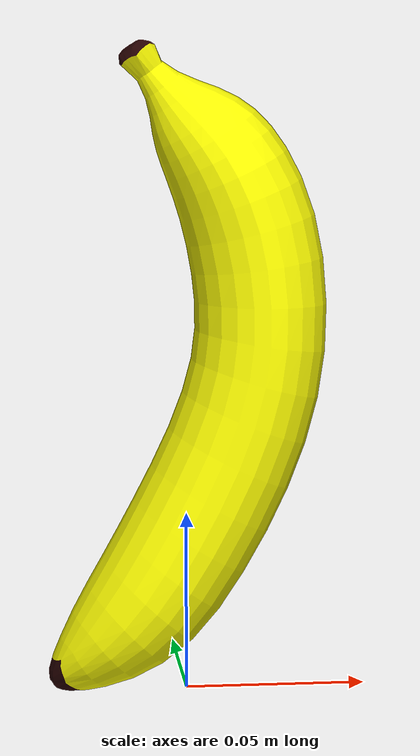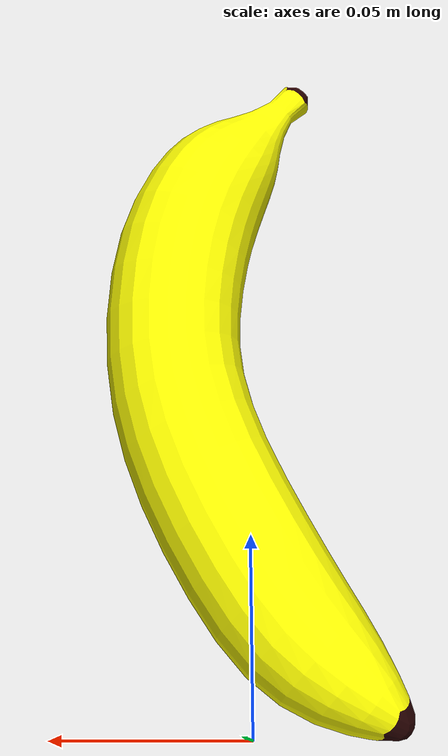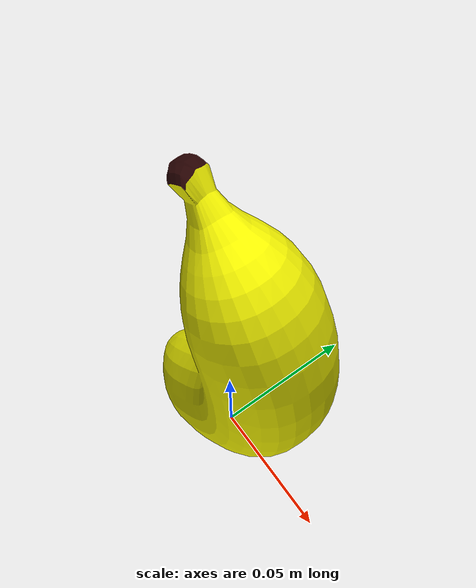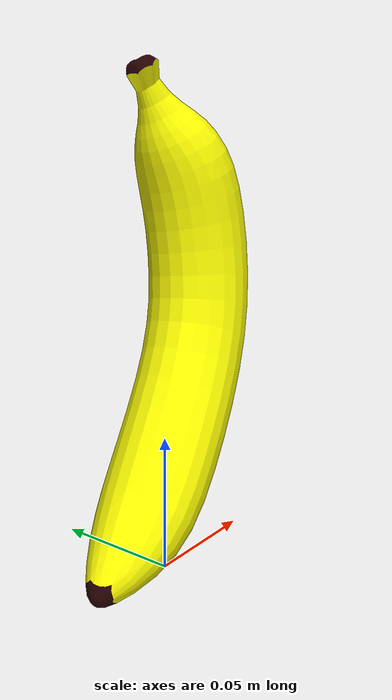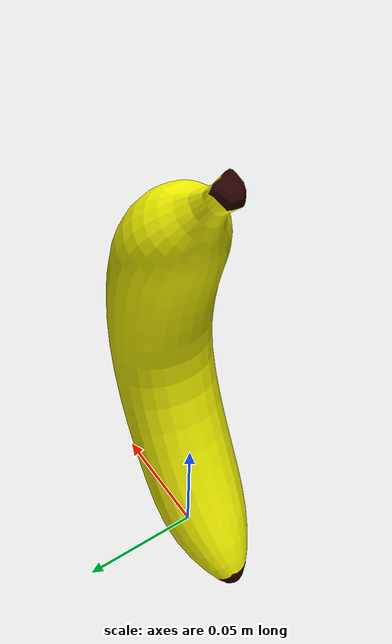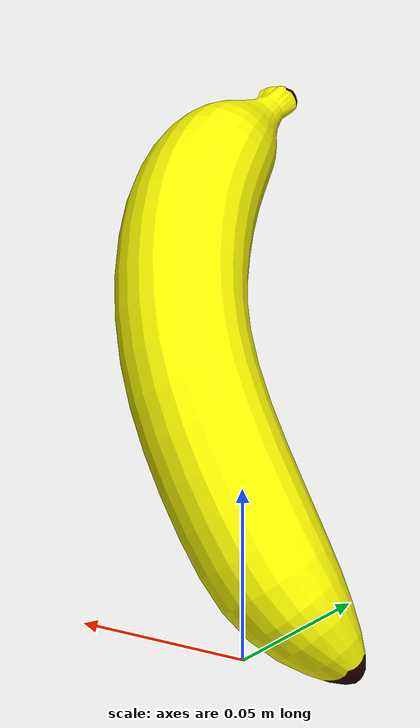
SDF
<sdf version='1.6'>
  <model name='banana'>
    <link name='banana_link'>
      <pose frame=''>0 0 0 0 -0 0</pose>
      <inertial>
        <pose frame=''>0.008419 0.000166 0.084099 0 -0 0</pose>
        <mass>0.01</mass>
        <inertia>
          <ixx>3.5873e-05</ixx>
          <ixy>1.5e-08</ixy>
          <ixz>-6.393e-06</ixz>
          <iyy>3.8443e-05</iyy>
          <iyz>1.5e-08</iyz>
          <izz>5.457e-06</izz>
        </inertia>
      </inertial>
      <collision name='banana_link_collision'>
        <pose frame=''>0 0 0 0 -0 0</pose>
        <geometry>
          <mesh>
            <scale>1 1 1</scale>
            <uri>model://gjt_ur_gazebo/urdf/meshes/banana.dae</uri>
          </mesh>
        </geometry>
        <surface>
          <contact>
            <ode/>
          </contact>
          <friction>
            <ode>
              <mu>100</mu>
              <mu2>100</mu2>
            </ode>
          </friction>
        </surface>
      </collision>
      <visual name='banana_link_visual'>
        <pose frame=''>0 0 0 0 -0 0</pose>
        <geometry>
          <mesh>
            <scale>1 1 1</scale>
            <uri>model://gjt_ur_gazebo/urdf/meshes/banana.dae</uri>
          </mesh>
        </geometry>
        <material>
          <script>
            <uri>__default__</uri>
            <name>__default__</name>
          </script>
        </material>
      </visual>
      <gravity>1</gravity>
      <velocity_decay/>
    </link>
  </model>
</sdf>
